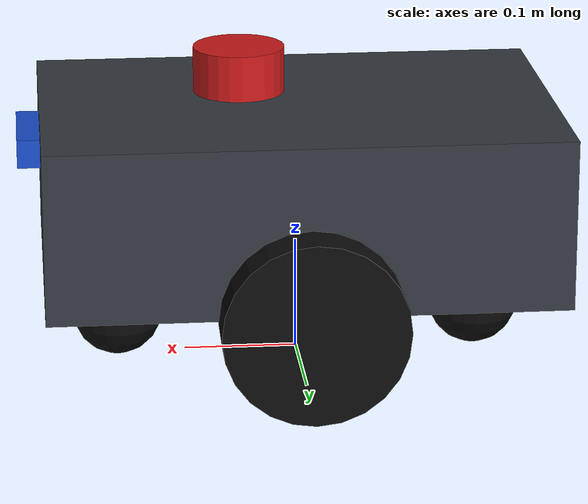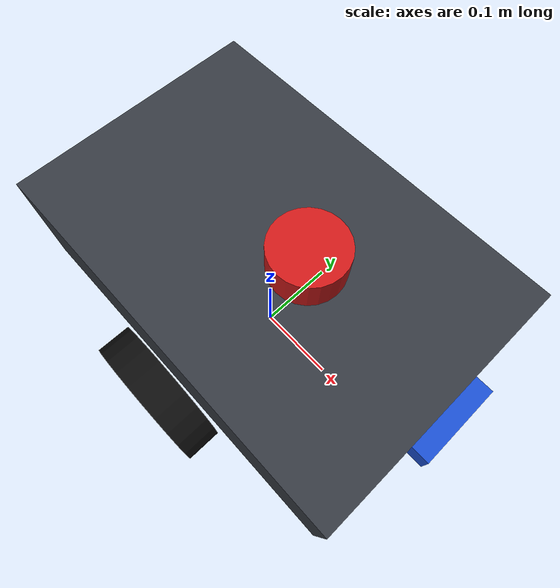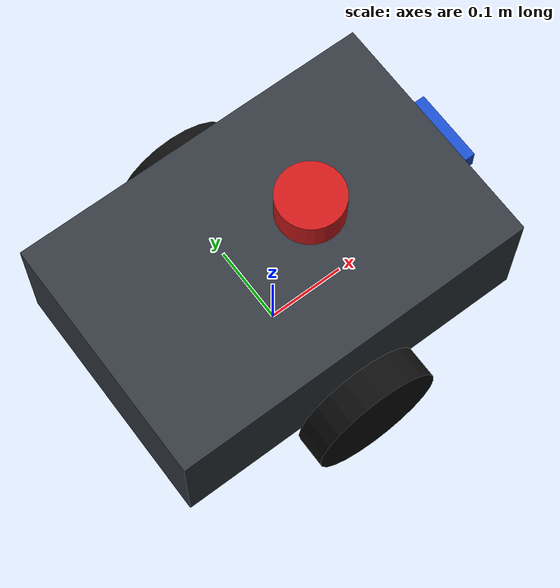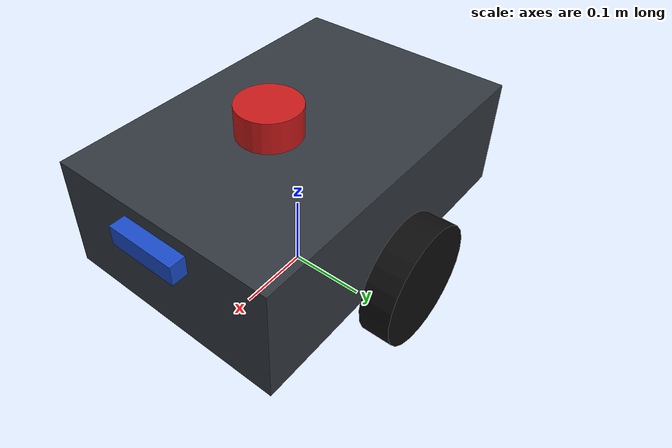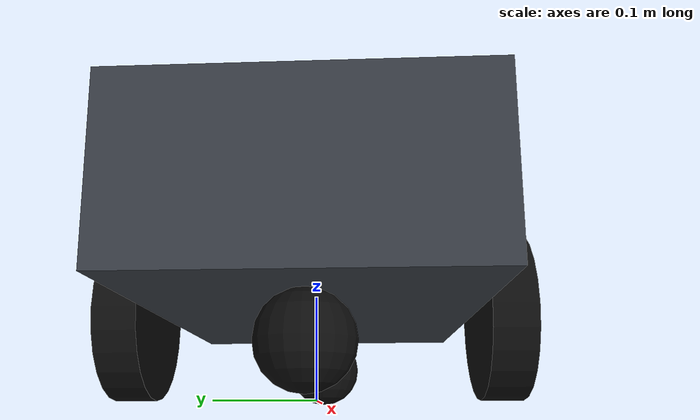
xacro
<?xml version="1.0"?>
<robot xmlns:xacro="http://www.ros.org/wiki/xacro" name="autonomous_ugv">

  <!-- Core chassis, wheels, dynamics -->
  <xacro:include filename="$(find autonomous_ugv_description)/urdf/robot_core.xacro" />

  <!-- Sensors: RGB-D, IMU, LiDAR -->
  <xacro:include filename="$(find autonomous_ugv_description)/urdf/sensors.xacro" />

  <!-- Gazebo sensor plugins & controllers -->
  <xacro:include filename="$(find autonomous_ugv_description)/urdf/gazebo_plugins.xacro" />

</robot>

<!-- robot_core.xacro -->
<robot xmlns:xacro="http://www.ros.org/wiki/xacro">

  <!-- Inertia macros for geometric primitives -->
  <xacro:macro name="inertial_sphere" params="mass radius *origin">
    <inertial>
      <xacro:insert_block name="origin"/>
      <mass value="${mass}" />
      <inertia ixx="${(2/5) * mass * (radius*radius)}" ixy="0.0" ixz="0.0"
               iyy="${(2/5) * mass * (radius*radius)}" iyz="0.0"
               izz="${(2/5) * mass * (radius*radius)}" />
    </inertial>
  </xacro:macro>

  <xacro:macro name="inertial_box" params="mass x y z *origin">
    <inertial>
      <xacro:insert_block name="origin"/>
      <mass value="${mass}" />
      <inertia ixx="${(1/12) * mass * (y*y + z*z)}" ixy="0.0" ixz="0.0"
               iyy="${(1/12) * mass * (x*x + z*z)}" iyz="0.0"
               izz="${(1/12) * mass * (x*x + y*y)}" />
    </inertial>
  </xacro:macro>

  <xacro:macro name="inertial_cylinder" params="mass length radius *origin">
    <inertial>
      <xacro:insert_block name="origin"/>
      <mass value="${mass}" />
      <inertia ixx="${(1/12) * mass * (3*radius*radius + length*length)}" ixy="0.0" ixz="0.0"
               iyy="${(1/12) * mass * (3*radius*radius + length*length)}" iyz="0.0"
               izz="${(1/2) * mass * (radius*radius)}" />
    </inertial>
  </xacro:macro>

  <!-- Materials -->
  <material name="chassis_grey">
    <color rgba="0.2 0.22 0.25 1.0"/>
  </material>
  <material name="wheel_black">
    <color rgba="0.05 0.05 0.05 1.0"/>
  </material>
  <material name="sensor_blue">
    <color rgba="0.1 0.3 0.8 1.0"/>
  </material>
  <material name="accent_red">
    <color rgba="0.8 0.1 0.1 1.0"/>
  </material>

  <!-- BASE LINK & FOOTPRINT -->
  <link name="base_footprint"/>

  <joint name="base_joint" type="fixed">
    <parent link="base_footprint"/>
    <child link="base_link"/>
    <origin xyz="0 0 0.08" rpy="0 0 0"/>
  </joint>

  <link name="base_link">
    <!-- Main Rugged Chassis -->
    <visual>
      <origin xyz="0 0 0.075" rpy="0 0 0"/>
      <geometry>
        <box size="0.45 0.30 0.15"/>
      </geometry>
      <material name="chassis_grey"/>
    </visual>
    <collision>
      <origin xyz="0 0 0.075" rpy="0 0 0"/>
      <geometry>
        <box size="0.45 0.30 0.15"/>
      </geometry>
    </collision>
    <xacro:inertial_box mass="8.5" x="0.45" y="0.30" z="0.15">
      <origin xyz="0 0 0.075" rpy="0 0 0"/>
    </xacro:inertial_box>
  </link>

  <!-- LEFT DRIVE WHEEL -->
  <joint name="left_wheel_joint" type="continuous">
    <parent link="base_link"/>
    <child link="left_wheel"/>
    <origin xyz="0 0.175 0" rpy="-${pi/2} 0 0"/>
    <axis xyz="0 0 1"/>
  </joint>

  <link name="left_wheel">
    <visual>
      <geometry>
        <cylinder radius="0.08" length="0.04"/>
      </geometry>
      <material name="wheel_black"/>
    </visual>
    <collision>
      <geometry>
        <cylinder radius="0.08" length="0.04"/>
      </geometry>
    </collision>
    <xacro:inertial_cylinder mass="0.8" length="0.04" radius="0.08">
      <origin xyz="0 0 0" rpy="0 0 0"/>
    </xacro:inertial_cylinder>
  </link>

  <!-- RIGHT DRIVE WHEEL -->
  <joint name="right_wheel_joint" type="continuous">
    <parent link="base_link"/>
    <child link="right_wheel"/>
    <origin xyz="0 -0.175 0" rpy="${pi/2} 0 0"/>
    <axis xyz="0 0 -1"/>
  </joint>

  <link name="right_wheel">
    <visual>
      <geometry>
        <cylinder radius="0.08" length="0.04"/>
      </geometry>
      <material name="wheel_black"/>
    </visual>
    <collision>
      <geometry>
        <cylinder radius="0.08" length="0.04"/>
      </geometry>
    </collision>
    <xacro:inertial_cylinder mass="0.8" length="0.04" radius="0.08">
      <origin xyz="0 0 0" rpy="0 0 0"/>
    </xacro:inertial_cylinder>
  </link>

  <!-- FRONT CASTER WHEEL -->
  <joint name="front_caster_joint" type="fixed">
    <parent link="base_link"/>
    <child link="front_caster"/>
    <origin xyz="0.16 0 -0.04" rpy="0 0 0"/>
  </joint>

  <link name="front_caster">
    <visual>
      <geometry>
        <sphere radius="0.04"/>
      </geometry>
      <material name="wheel_black"/>
    </visual>
    <collision>
      <geometry>
        <sphere radius="0.04"/>
      </geometry>
    </collision>
    <xacro:inertial_sphere mass="0.3" radius="0.04">
      <origin xyz="0 0 0" rpy="0 0 0"/>
    </xacro:inertial_sphere>
  </link>

  <!-- REAR CASTER WHEEL -->
  <joint name="rear_caster_joint" type="fixed">
    <parent link="base_link"/>
    <child link="rear_caster"/>
    <origin xyz="-0.16 0 -0.04" rpy="0 0 0"/>
  </joint>

  <link name="rear_caster">
    <visual>
      <geometry>
        <sphere radius="0.04"/>
      </geometry>
      <material name="wheel_black"/>
    </visual>
    <collision>
      <geometry>
        <sphere radius="0.04"/>
      </geometry>
    </collision>
    <xacro:inertial_sphere mass="0.3" radius="0.04">
      <origin xyz="0 0 0" rpy="0 0 0"/>
    </xacro:inertial_sphere>
  </link>

</robot>

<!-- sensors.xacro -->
<robot xmlns:xacro="http://www.ros.org/wiki/xacro">

  <!-- 1. 9-DoF IMU SENSOR (CENTER OF GRAVITY)    -->
  <joint name="imu_joint" type="fixed">
    <parent link="base_link"/>
    <child link="imu_link"/>
    <origin xyz="0 0 0.05" rpy="0 0 0"/>
  </joint>

  <link name="imu_link">
    <visual>
      <geometry>
        <box size="0.04 0.04 0.015"/>
      </geometry>
      <material name="accent_red"/>
    </visual>
    <collision>
      <geometry>
        <box size="0.04 0.04 0.015"/>
      </geometry>
    </collision>
    <xacro:inertial_box mass="0.05" x="0.04" y="0.04" z="0.015">
      <origin xyz="0 0 0" rpy="0 0 0"/>
    </xacro:inertial_box>
  </link>

  <!-- 2. REALSENSE D435 RGB-D DEPTH CAMERA       -->
  <joint name="camera_joint" type="fixed">
    <parent link="base_link"/>
    <child link="camera_link"/>
    <origin xyz="0.23 0 0.12" rpy="0 0 0"/>
  </joint>

  <link name="camera_link">
    <visual>
      <geometry>
        <box size="0.03 0.09 0.025"/>
      </geometry>
      <material name="sensor_blue"/>
    </visual>
    <collision>
      <geometry>
        <box size="0.03 0.09 0.025"/>
      </geometry>
    </collision>
    <xacro:inertial_box mass="0.07" x="0.03" y="0.09" z="0.025">
      <origin xyz="0 0 0" rpy="0 0 0"/>
    </xacro:inertial_box>
  </link>

  <!-- Optical frame for ROS/OpenCV image coordinate conventions (+Z forward, +X right, +Y down) -->
  <joint name="camera_optical_joint" type="fixed">
    <parent link="camera_link"/>
    <child link="camera_link_optical"/>
    <origin xyz="0 0 0" rpy="-${pi/2} 0 -${pi/2}"/>
  </joint>

  <link name="camera_link_optical"/>

  <!-- 3. 2D / 3D LIDAR SCANNER                   -->
  <joint name="laser_joint" type="fixed">
    <parent link="base_link"/>
    <child link="laser_frame"/>
    <origin xyz="0.05 0 0.18" rpy="0 0 0"/>
  </joint>

  <link name="laser_frame">
    <visual>
      <geometry>
        <cylinder radius="0.04" length="0.04"/>
      </geometry>
      <material name="accent_red"/>
    </visual>
    <collision>
      <geometry>
        <cylinder radius="0.04" length="0.04"/>
      </geometry>
    </collision>
    <xacro:inertial_cylinder mass="0.15" radius="0.04" length="0.04">
      <origin xyz="0 0 0" rpy="0 0 0"/>
    </xacro:inertial_cylinder>
  </link>

</robot>
